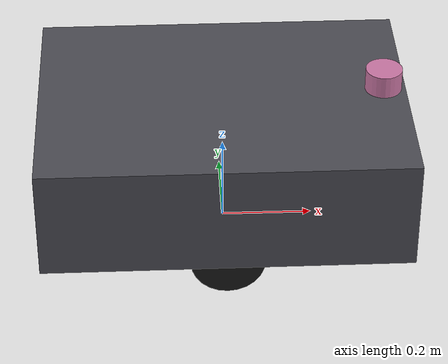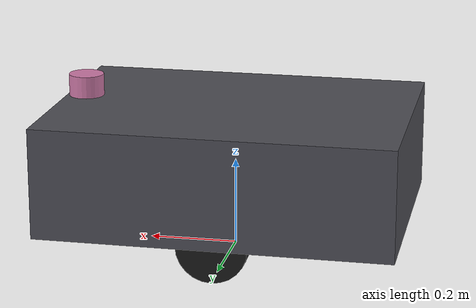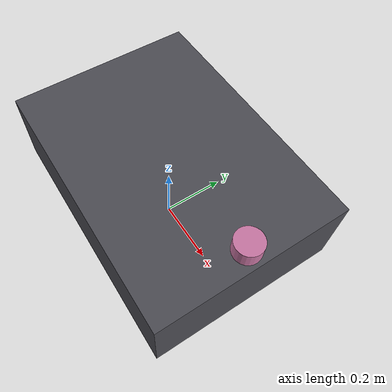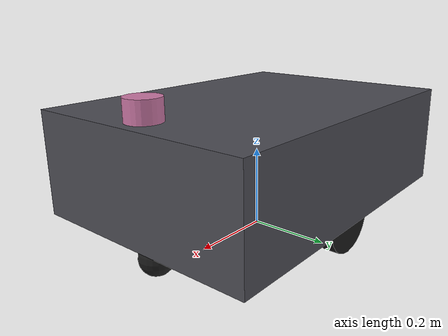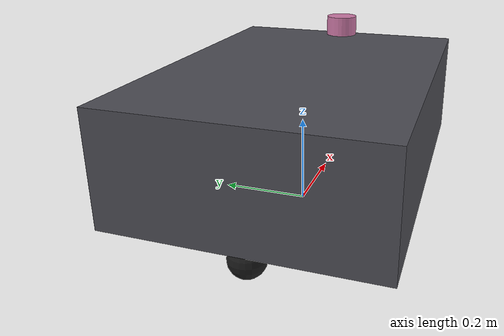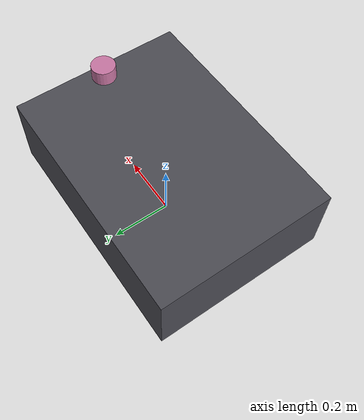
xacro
<?xml version="1.0"?>
<robot name="warehouse_amr" xmlns:xacro="http://www.ros.org/wiki/xacro">

  <!-- ===== Dimensions ===== -->
  <xacro:property name="chassis_length" value="0.80"/>
  <xacro:property name="chassis_width" value="0.58"/>
  <xacro:property name="chassis_height" value="0.25"/>
  <xacro:property name="chassis_mass" value="70.0"/>

  <xacro:property name="wheel_radius" value="0.08"/>
  <xacro:property name="wheel_width" value="0.04"/>
  <xacro:property name="wheel_separation" value="0.50"/>
  <xacro:property name="wheel_mass" value="2.0"/>

  <xacro:property name="caster_radius" value="0.04"/>
  <xacro:property name="caster_offset_x" value="0.34"/>

  <!-- chassis sits above the ground by wheel_radius -->
  <xacro:property name="chassis_z" value="${wheel_radius + chassis_height/2}"/>

  <material name="amr_grey"><color rgba="0.3 0.3 0.33 1.0"/></material>
  <material name="wheel_black"><color rgba="0.1 0.1 0.1 1.0"/></material>

  <!-- ===== base_footprint -> base_link (standard convention: base_footprint
       is on the ground, base_link is the chassis center) ===== -->
  <link name="base_footprint"/>

  <joint name="base_footprint_joint" type="fixed">
    <parent link="base_footprint"/>
    <child link="base_link"/>
    <origin xyz="0 0 ${chassis_z}" rpy="0 0 0"/>
  </joint>

  <link name="base_link">
    <visual>
      <geometry><box size="${chassis_length} ${chassis_width} ${chassis_height}"/></geometry>
      <material name="amr_grey"/>
    </visual>
    <collision>
      <geometry><box size="${chassis_length} ${chassis_width} ${chassis_height}"/></geometry>
    </collision>
    <inertial>
      <mass value="${chassis_mass}"/>
      <inertia ixx="3.0" ixy="0" ixz="0" iyy="4.0" iyz="0" izz="5.0"/>
    </inertial>
  </link>

  <!-- ===== Drive wheels (actuated) ===== -->
  <xacro:macro name="drive_wheel" params="side y_sign">
    <link name="${side}_wheel_link">
      <visual>
        <origin xyz="0 0 0" rpy="${pi/2} 0 0"/>
        <geometry><cylinder radius="${wheel_radius}" length="${wheel_width}"/></geometry>
        <material name="wheel_black"/>
      </visual>
      <collision>
        <origin xyz="0 0 0" rpy="${pi/2} 0 0"/>
        <geometry><cylinder radius="${wheel_radius}" length="${wheel_width}"/></geometry>
      </collision>
      <inertial>
        <mass value="${wheel_mass}"/>
        <inertia ixx="0.01" ixy="0" ixz="0" iyy="0.01" iyz="0" izz="0.01"/>
      </inertial>
    </link>

    <joint name="${side}_wheel_joint" type="continuous">
      <parent link="base_link"/>
      <child link="${side}_wheel_link"/>
      <origin xyz="0 ${y_sign * wheel_separation/2} ${-chassis_height/2}" rpy="0 0 0"/>
      <axis xyz="0 1 0"/>
    </joint>
  </xacro:macro>

  <xacro:drive_wheel side="left" y_sign="1"/>
  <xacro:drive_wheel side="right" y_sign="-1"/>

  <!-- ===== Caster wheels (passive, front and rear, for stability) ===== -->
  <xacro:macro name="caster_wheel" params="name x_pos">
    <link name="${name}_caster_link">
      <visual>
        <geometry><sphere radius="${caster_radius}"/></geometry>
        <material name="wheel_black"/>
      </visual>
      <collision>
        <geometry><sphere radius="${caster_radius}"/></geometry>
      </collision>
      <inertial>
        <mass value="0.5"/>
        <inertia ixx="0.001" ixy="0" ixz="0" iyy="0.001" iyz="0" izz="0.001"/>
      </inertial>
    </link>
    <joint name="${name}_caster_joint" type="fixed">
      <parent link="base_link"/>
      <child link="${name}_caster_link"/>
      <origin xyz="${x_pos} 0 ${-chassis_height/2 - (wheel_radius - caster_radius)}" rpy="0 0 0"/>
    </joint>
  </xacro:macro>

  <xacro:caster_wheel name="front" x_pos="${caster_offset_x}"/>
  <xacro:caster_wheel name="rear" x_pos="${-caster_offset_x}"/>

  <!-- ===== Front 2D LiDAR ===== -->
  <link name="lidar_link">
    <visual><geometry><cylinder radius="0.04" length="0.05"/></geometry></visual>
    <collision><geometry><cylinder radius="0.04" length="0.05"/></geometry></collision>
    <inertial><mass value="0.2"/><inertia ixx="0.0001" ixy="0" ixz="0" iyy="0.0001" iyz="0" izz="0.0001"/></inertial>
  </link>
  <joint name="lidar_joint" type="fixed">
    <parent link="base_link"/>
    <child link="lidar_link"/>
    <origin xyz="${chassis_length/2 - 0.05} 0 ${chassis_height/2 + 0.03}" rpy="0 0 0"/>
  </joint>

  <!-- ===== IMU ===== -->
  <link name="imu_link"/>
  <joint name="imu_joint" type="fixed">
    <parent link="base_link"/>
    <child link="imu_link"/>
    <origin xyz="0 0 0" rpy="0 0 0"/>
  </joint>

  <!-- ===== ros2_control: diff drive via two continuous wheel joints ===== -->
  <ros2_control name="amr_system" type="system">
    <hardware>
      <plugin>gz_ros2_control/GazeboSimSystem</plugin>
    </hardware>
    <joint name="left_wheel_joint">
      <command_interface name="velocity"/>
      <state_interface name="position"/>
      <state_interface name="velocity"/>
    </joint>
    <joint name="right_wheel_joint">
      <command_interface name="velocity"/>
      <state_interface name="position"/>
      <state_interface name="velocity"/>
    </joint>
  </ros2_control>

  <gazebo>
    <plugin filename="gz_ros2_control-system" name="gz_ros2_control::GazeboSimROS2ControlPlugin">
      <parameters>$(find warehouse_amr)/config/amr_controllers.yaml</parameters>
    </plugin>
  </gazebo>

  <!-- LiDAR sensor plugin -->
  <gazebo reference="lidar_link">
    <sensor name="lidar" type="gpu_lidar">
      <pose>0 0 0 0 0 0</pose>
      <topic>scan</topic>
      <gz_frame_id>lidar_link</gz_frame_id>
      <update_rate>10</update_rate>
      <lidar>
        <scan>
          <horizontal>
            <samples>360</samples>
            <resolution>1</resolution>
            <min_angle>-3.14159</min_angle>
            <max_angle>3.14159</max_angle>
          </horizontal>
        </scan>
        <range><min>0.1</min><max>12.0</max><resolution>0.01</resolution></range>
      </lidar>
      <always_on>true</always_on>
      <visualize>false</visualize>
    </sensor>
  </gazebo>

  <!-- IMU sensor plugin -->
  <gazebo reference="imu_link">
    <sensor name="imu_sensor" type="imu">
      <topic>imu</topic>
      <update_rate>50</update_rate>
      <always_on>true</always_on>
    </sensor>
  </gazebo>

</robot>
